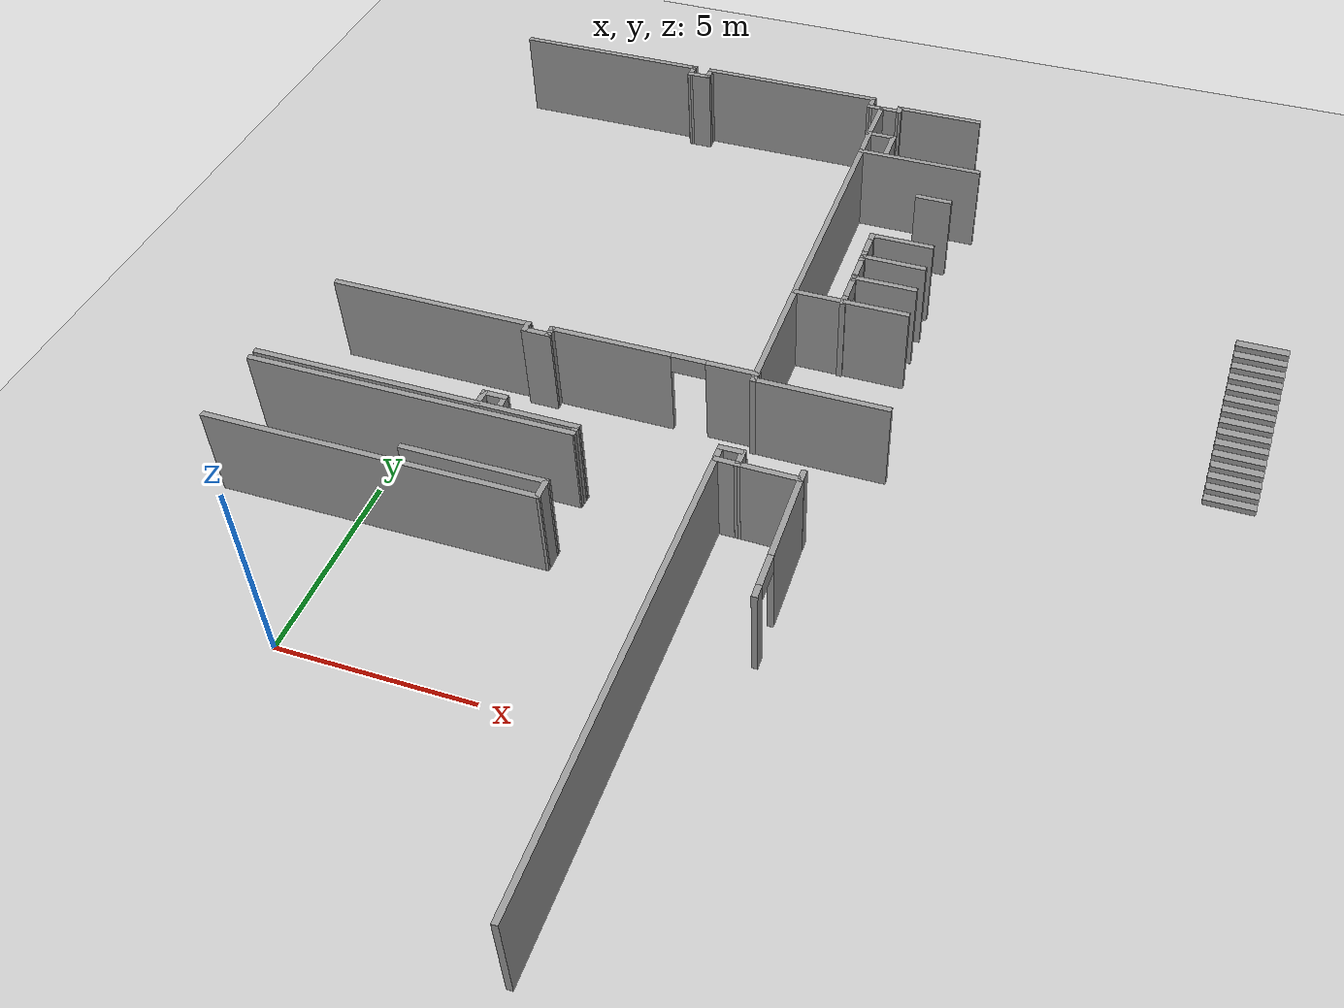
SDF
<sdf version="1.6">
 <world name="default">
  <model name="ground_plane">
   <static>1</static>
   <link name="link">
    <collision name="collision">
     <geometry><plane><normal>0 0 1</normal><size>100 100</size></plane></geometry>
     <surface>
      <contact><collide_bitmask>65535</collide_bitmask></contact>
      <friction><ode><mu>100</mu><mu2>50</mu2></ode></friction>
     </surface>
    </collision>
    <visual name="visual">
     <cast_shadows>0</cast_shadows>
     <geometry><plane><normal>0 0 1</normal><size>100 100</size></plane></geometry>
     <material>
      <script><uri>file://media/materials/scripts/gazebo.material</uri><name>Gazebo/Grey</name></script>
     </material>
    </visual>
   </link>
  </model>
  <model name="Myhal_5th_floor">
   <pose>-0.342666 0.4433 0 0 -0 0</pose>
   <link name="Stairs_4">
    <visual name="Stairs_4_Visual_0">
     <pose>20.1871 10.4054 0.083333 0 -0 -3.14159</pose>
     <geometry><box><size>1.28367 0.223247 0.166667</size></box></geometry>
     <material>
      <script><uri>file://media/materials/scripts/gazebo.material</uri><name>Gazebo/Grey</name></script>
      <ambient>1 1 1 1</ambient>
     </material>
     <meta><layer>0</layer></meta>
    </visual>
    <collision name="Stairs_4_Collision_0">
     <geometry><box><size>1.28367 0.223247 0.166667</size></box></geometry>
     <pose>20.1871 10.4054 0.083333 0 -0 -3.14159</pose>
    </collision>
    <visual name="Stairs_4_Visual_1">
     <pose>20.1871 10.6286 0.25 0 -0 -3.14159</pose>
     <geometry><box><size>1.28367 0.223247 0.166667</size></box></geometry>
     <material>
      <script><uri>file://media/materials/scripts/gazebo.material</uri><name>Gazebo/Grey</name></script>
      <ambient>1 1 1 1</ambient>
     </material>
     <meta><layer>0</layer></meta>
    </visual>
    <collision name="Stairs_4_Collision_1">
     <geometry><box><size>1.28367 0.223247 0.166667</size></box></geometry>
     <pose>20.1871 10.6286 0.25 0 -0 -3.14159</pose>
    </collision>
    <visual name="Stairs_4_Visual_2">
     <pose>20.1871 10.8519 0.416667 0 -0 -3.14159</pose>
     <geometry><box><size>1.28367 0.223247 0.166667</size></box></geometry>
     <material>
      <script><uri>file://media/materials/scripts/gazebo.material</uri><name>Gazebo/Grey</name></script>
      <ambient>1 1 1 1</ambient>
     </material>
     <meta><layer>0</layer></meta>
    </visual>
    <collision name="Stairs_4_Collision_2">
     <geometry><box><size>1.28367 0.223247 0.166667</size></box></geometry>
     <pose>20.1871 10.8519 0.416667 0 -0 -3.14159</pose>
    </collision>
    <visual name="Stairs_4_Visual_3">
     <pose>20.1871 11.0751 0.583333 0 -0 -3.14159</pose>
     <geometry><box><size>1.28367 0.223247 0.166667</size></box></geometry>
     <material>
      <script><uri>file://media/materials/scripts/gazebo.material</uri><name>Gazebo/Grey</name></script>
      <ambient>1 1 1 1</ambient>
     </material>
     <meta><layer>0</layer></meta>
    </visual>
    <collision name="Stairs_4_Collision_3">
     <geometry><box><size>1.28367 0.223247 0.166667</size></box></geometry>
     <pose>20.1871 11.0751 0.583333 0 -0 -3.14159</pose>
    </collision>
    <visual name="Stairs_4_Visual_4">
     <pose>20.1871 11.2984 0.75 0 -0 -3.14159</pose>
     <geometry><box><size>1.28367 0.223247 0.166667</size></box></geometry>
     <material>
      <script><uri>file://media/materials/scripts/gazebo.material</uri><name>Gazebo/Grey</name></script>
      <ambient>1 1 1 1</ambient>
     </material>
     <meta><layer>0</layer></meta>
    </visual>
    <collision name="Stairs_4_Collision_4">
     <geometry><box><size>1.28367 0.223247 0.166667</size></box></geometry>
     <pose>20.1871 11.2984 0.75 0 -0 -3.14159</pose>
    </collision>
    <visual name="Stairs_4_Visual_5">
     <pose>20.1871 11.5216 0.916667 0 -0 -3.14159</pose>
     <geometry><box><size>1.28367 0.223247 0.166667</size></box></geometry>
     <material>
      <script><uri>file://media/materials/scripts/gazebo.material</uri><name>Gazebo/Grey</name></script>
      <ambient>1 1 1 1</ambient>
     </material>
     <meta><layer>0</layer></meta>
    </visual>
    <collision name="Stairs_4_Collision_5">
     <geometry><box><size>1.28367 0.223247 0.166667</size></box></geometry>
     <pose>20.1871 11.5216 0.916667 0 -0 -3.14159</pose>
    </collision>
    <visual name="Stairs_4_Visual_6">
     <pose>20.1871 11.7449 1.08333 0 -0 -3.14159</pose>
     <geometry><box><size>1.28367 0.223247 0.166667</size></box></geometry>
     <material>
      <script><uri>file://media/materials/scripts/gazebo.material</uri><name>Gazebo/Grey</name></script>
      <ambient>1 1 1 1</ambient>
     </material>
     <meta><layer>0</layer></meta>
    </visual>
    <collision name="Stairs_4_Collision_6">
     <geometry><box><size>1.28367 0.223247 0.166667</size></box></geometry>
     <pose>20.1871 11.7449 1.08333 0 -0 -3.14159</pose>
    </collision>
    <visual name="Stairs_4_Visual_7">
     <pose>20.1871 11.9681 1.25 0 -0 -3.14159</pose>
     <geometry><box><size>1.28367 0.223247 0.166667</size></box></geometry>
     <material>
      <script><uri>file://media/materials/scripts/gazebo.material</uri><name>Gazebo/Grey</name></script>
      <ambient>1 1 1 1</ambient>
     </material>
     <meta><layer>0</layer></meta>
    </visual>
    <collision name="Stairs_4_Collision_7">
     <geometry><box><size>1.28367 0.223247 0.166667</size></box></geometry>
     <pose>20.1871 11.9681 1.25 0 -0 -3.14159</pose>
    </collision>
    <visual name="Stairs_4_Visual_8">
     <pose>20.1871 12.1914 1.41667 0 -0 -3.14159</pose>
     <geometry><box><size>1.28367 0.223247 0.166667</size></box></geometry>
     <material>
      <script><uri>file://media/materials/scripts/gazebo.material</uri><name>Gazebo/Grey</name></script>
      <ambient>1 1 1 1</ambient>
     </material>
     <meta><layer>0</layer></meta>
    </visual>
    <collision name="Stairs_4_Collision_8">
     <geometry><box><size>1.28367 0.223247 0.166667</size></box></geometry>
     <pose>20.1871 12.1914 1.41667 0 -0 -3.14159</pose>
    </collision>
    <visual name="Stairs_4_Visual_9">
     <pose>20.1871 12.4146 1.58333 0 -0 -3.14159</pose>
     <geometry><box><size>1.28367 0.223247 0.166667</size></box></geometry>
     <material>
      <script><uri>file://media/materials/scripts/gazebo.material</uri><name>Gazebo/Grey</name></script>
      <ambient>1 1 1 1</ambient>
     </material>
     <meta><layer>0</layer></meta>
    </visual>
    <collision name="Stairs_4_Collision_9">
     <geometry><box><size>1.28367 0.223247 0.166667</size></box></geometry>
     <pose>20.1871 12.4146 1.58333 0 -0 -3.14159</pose>
    </collision>
    <visual name="Stairs_4_Visual_10">
     <pose>20.1871 12.6379 1.75 0 -0 -3.14159</pose>
     <geometry><box><size>1.28367 0.223247 0.166667</size></box></geometry>
     <material>
      <script><uri>file://media/materials/scripts/gazebo.material</uri><name>Gazebo/Grey</name></script>
      <ambient>1 1 1 1</ambient>
     </material>
     <meta><layer>0</layer></meta>
    </visual>
    <collision name="Stairs_4_Collision_10">
     <geometry><box><size>1.28367 0.223247 0.166667</size></box></geometry>
     <pose>20.1871 12.6379 1.75 0 -0 -3.14159</pose>
    </collision>
    <visual name="Stairs_4_Visual_11">
     <pose>20.1871 12.8611 1.91667 0 -0 -3.14159</pose>
     <geometry><box><size>1.28367 0.223247 0.166667</size></box></geometry>
     <material>
      <script><uri>file://media/materials/scripts/gazebo.material</uri><name>Gazebo/Grey</name></script>
      <ambient>1 1 1 1</ambient>
     </material>
     <meta><layer>0</layer></meta>
    </visual>
    <collision name="Stairs_4_Collision_11">
     <geometry><box><size>1.28367 0.223247 0.166667</size></box></geometry>
     <pose>20.1871 12.8611 1.91667 0 -0 -3.14159</pose>
    </collision>
    <visual name="Stairs_4_Visual_12">
     <pose>20.1871 13.0844 2.08333 0 -0 -3.14159</pose>
     <geometry><box><size>1.28367 0.223247 0.166667</size></box></geometry>
     <material>
      <script><uri>file://media/materials/scripts/gazebo.material</uri><name>Gazebo/Grey</name></script>
      <ambient>1 1 1 1</ambient>
     </material>
     <meta><layer>0</layer></meta>
    </visual>
    <collision name="Stairs_4_Collision_12">
     <geometry><box><size>1.28367 0.223247 0.166667</size></box></geometry>
     <pose>20.1871 13.0844 2.08333 0 -0 -3.14159</pose>
    </collision>
    <visual name="Stairs_4_Visual_13">
     <pose>20.1871 13.3076 2.25 0 -0 -3.14159</pose>
     <geometry><box><size>1.28367 0.223247 0.166667</size></box></geometry>
     <material>
      <script><uri>file://media/materials/scripts/gazebo.material</uri><name>Gazebo/Grey</name></script>
      <ambient>1 1 1 1</ambient>
     </material>
     <meta><layer>0</layer></meta>
    </visual>
    <collision name="Stairs_4_Collision_13">
     <geometry><box><size>1.28367 0.223247 0.166667</size></box></geometry>
     <pose>20.1871 13.3076 2.25 0 -0 -3.14159</pose>
    </collision>
    <visual name="Stairs_4_Visual_14">
     <pose>20.1871 13.5309 2.41667 0 -0 -3.14159</pose>
     <geometry><box><size>1.28367 0.223247 0.166667</size></box></geometry>
     <material>
      <script><uri>file://media/materials/scripts/gazebo.material</uri><name>Gazebo/Grey</name></script>
      <ambient>1 1 1 1</ambient>
     </material>
     <meta><layer>0</layer></meta>
    </visual>
    <collision name="Stairs_4_Collision_14">
     <geometry><box><size>1.28367 0.223247 0.166667</size></box></geometry>
     <pose>20.1871 13.5309 2.41667 0 -0 -3.14159</pose>
    </collision>
   </link>
   <link name="Wall_102">
    <collision name="Wall_102_Collision">
     <geometry><box><size>1.64842 0.15 2.5</size></box></geometry>
     <pose>0 0 1.25 0 -0 0</pose>
    </collision>
    <visual name="Wall_102_Visual">
     <pose>0 0 1.25 0 -0 0</pose>
     <geometry><box><size>1.64842 0.15 2.5</size></box></geometry>
     <material>
      <script><uri>file://media/materials/scripts/gazebo.material</uri><name>Gazebo/Grey</name></script>
      <ambient>1 1 1 1</ambient>
     </material>
     <meta><layer>0</layer></meta>
    </visual>
    <pose>9.91984 5.85077 0 0 -0 -0.006668</pose>
   </link>
   <link name="Wall_104">
    <pose>10.6939 4.11514 0 0 -0 -1.55644</pose>
    <visual name="Wall_104_Visual_0">
     <pose>-0.603871 0 1.25 0 -0 0</pose>
     <geometry><box><size>2.40404 0.15 2.5</size></box></geometry>
     <material>
      <script><uri>file://media/materials/scripts/gazebo.material</uri><name>Gazebo/Grey</name></script>
      <ambient>1 1 1 1</ambient>
     </material>
     <meta><layer>0</layer></meta>
    </visual>
    <collision name="Wall_104_Collision_0">
     <geometry><box><size>2.40404 0.15 2.5</size></box></geometry>
     <pose>-0.603871 0 1.25 0 -0 0</pose>
    </collision>
    <visual name="Wall_104_Visual_1">
     <pose>1.63287 0 1.25 0 -0 0</pose>
     <geometry><box><size>0.346047 0.15 2.5</size></box></geometry>
     <material>
      <script><uri>file://media/materials/scripts/gazebo.material</uri><name>Gazebo/Grey</name></script>
      <ambient>1 1 1 1</ambient>
     </material>
     <meta><layer>0</layer></meta>
    </visual>
    <collision name="Wall_104_Collision_1">
     <geometry><box><size>0.346047 0.15 2.5</size></box></geometry>
     <pose>1.63287 0 1.25 0 -0 0</pose>
    </collision>
    <visual name="Wall_104_Visual_2">
     <pose>1.029 0 2.25 0 -0 0</pose>
     <geometry><box><size>0.861696 0.15 0.5</size></box></geometry>
     <material>
      <script><uri>file://media/materials/scripts/gazebo.material</uri><name>Gazebo/Grey</name></script>
      <ambient>1 1 1 1</ambient>
     </material>
     <meta><layer>0</layer></meta>
    </visual>
    <collision name="Wall_104_Collision_2">
     <geometry><box><size>0.861696 0.15 0.5</size></box></geometry>
     <pose>1.029 0 2.25 0 -0 0</pose>
    </collision>
   </link>
   <link name="Wall_117">
    <collision name="Wall_117_Collision">
     <geometry><box><size>0.362716 0.15 2.5</size></box></geometry>
     <pose>0 0 1.25 0 -0 0</pose>
    </collision>
    <visual name="Wall_117_Visual">
     <pose>0 0 1.25 0 -0 0</pose>
     <geometry><box><size>0.362716 0.15 2.5</size></box></geometry>
     <material>
      <script><uri>file://media/materials/scripts/gazebo.material</uri><name>Gazebo/Grey</name></script>
      <ambient>1 1 1 1</ambient>
     </material>
     <meta><layer>0</layer></meta>
    </visual>
    <pose>10.6701 5.95213 0 0 -0 1.56042</pose>
   </link>
   <link name="Wall_17">
    <collision name="Wall_17_Collision">
     <geometry><box><size>3.75 0.15 2.5</size></box></geometry>
     <pose>0 0 1.25 0 -0 0</pose>
    </collision>
    <visual name="Wall_17_Visual">
     <pose>0 0 1.25 0 -0 0</pose>
     <geometry><box><size>3.75 0.15 2.5</size></box></geometry>
     <material>
      <script><uri>file://media/materials/scripts/gazebo.material</uri><name>Gazebo/Grey</name></script>
      <ambient>1 1 1 1</ambient>
     </material>
     <meta><layer>0</layer></meta>
    </visual>
    <pose>3.43977 4.01995 0 0 -0 0</pose>
   </link>
   <link name="Wall_18">
    <collision name="Wall_18_Collision">
     <geometry><box><size>0.620131 0.15 2.5</size></box></geometry>
     <pose>0 0 1.25 0 -0 0</pose>
    </collision>
    <visual name="Wall_18_Visual">
     <pose>0 0 1.25 0 -0 0</pose>
     <geometry><box><size>0.620131 0.15 2.5</size></box></geometry>
     <material>
      <script><uri>file://media/materials/scripts/gazebo.material</uri><name>Gazebo/Grey</name></script>
      <ambient>1 1 1 1</ambient>
     </material>
     <meta><layer>0</layer></meta>
    </visual>
    <pose>5.23862 3.7849 0 0 -0 -1.5757</pose>
   </link>
   <link name="Wall_20">
    <collision name="Wall_20_Collision">
     <geometry><box><size>8.64006 0.15 2.5</size></box></geometry>
     <pose>0 0 1.25 0 -0 0</pose>
    </collision>
    <visual name="Wall_20_Visual">
     <pose>0 0 1.25 0 -0 0</pose>
     <geometry><box><size>8.64006 0.15 2.5</size></box></geometry>
     <material>
      <script><uri>file://media/materials/scripts/gazebo.material</uri><name>Gazebo/Grey</name></script>
      <ambient>1 1 1 1</ambient>
     </material>
     <meta><layer>0</layer></meta>
    </visual>
    <pose>0.992435 3.54836 0 0 -0 -3.14124</pose>
   </link>
   <link name="Wall_22">
    <collision name="Wall_22_Collision">
     <geometry><box><size>8.62254 0.15 2.5</size></box></geometry>
     <pose>0 0 1.25 0 -0 0</pose>
    </collision>
    <visual name="Wall_22_Visual">
     <pose>0 0 1.25 0 -0 0</pose>
     <geometry><box><size>8.62254 0.15 2.5</size></box></geometry>
     <material>
      <script><uri>file://media/materials/scripts/gazebo.material</uri><name>Gazebo/Grey</name></script>
      <ambient>1 1 1 1</ambient>
     </material>
     <meta><layer>0</layer></meta>
    </visual>
    <pose>0.976204 5.62118 0 0 -0 0.000372</pose>
   </link>
   <link name="Wall_23">
    <collision name="Wall_23_Collision">
     <geometry><box><size>0.372408 0.15 2.5</size></box></geometry>
     <pose>0 0 1.25 0 -0 0</pose>
    </collision>
    <visual name="Wall_23_Visual">
     <pose>0 0 1.25 0 -0 0</pose>
     <geometry><box><size>0.372408 0.15 2.5</size></box></geometry>
     <material>
      <script><uri>file://media/materials/scripts/gazebo.material</uri><name>Gazebo/Grey</name></script>
      <ambient>1 1 1 1</ambient>
     </material>
     <meta><layer>0</layer></meta>
    </visual>
    <pose>5.2195 5.73665 0 0 -0 1.47916</pose>
   </link>
   <link name="Wall_24">
    <collision name="Wall_24_Collision">
     <geometry><box><size>8.6177 0.15 2.5</size></box></geometry>
     <pose>0 0 1.25 0 -0 0</pose>
    </collision>
    <visual name="Wall_24_Visual">
     <pose>0 0 1.25 0 -0 0</pose>
     <geometry><box><size>8.6177 0.15 2.5</size></box></geometry>
     <material>
      <script><uri>file://media/materials/scripts/gazebo.material</uri><name>Gazebo/Grey</name></script>
      <ambient>1 1 1 1</ambient>
     </material>
     <meta><layer>0</layer></meta>
    </visual>
    <pose>0.995836 5.85711 0 0 -0 3.1393</pose>
   </link>
   <link name="Wall_31">
    <collision name="Wall_31_Collision">
     <geometry><box><size>0.543989 0.15 2.5</size></box></geometry>
     <pose>0 0 1.25 0 -0 0</pose>
    </collision>
    <visual name="Wall_31_Visual">
     <pose>0 0 1.25 0 -0 0</pose>
     <geometry><box><size>0.543989 0.15 2.5</size></box></geometry>
     <material>
      <script><uri>file://media/materials/scripts/gazebo.material</uri><name>Gazebo/Grey</name></script>
      <ambient>1 1 1 1</ambient>
     </material>
     <meta><layer>0</layer></meta>
    </visual>
    <pose>2.6884 6.0395 0 0 -0 1.55845</pose>
   </link>
   <link name="Wall_32">
    <collision name="Wall_32_Collision">
     <geometry><box><size>0.680142 0.15 2.5</size></box></geometry>
     <pose>0 0 1.25 0 -0 0</pose>
    </collision>
    <visual name="Wall_32_Visual">
     <pose>0 0 1.25 0 -0 0</pose>
     <geometry><box><size>0.680142 0.15 2.5</size></box></geometry>
     <material>
      <script><uri>file://media/materials/scripts/gazebo.material</uri><name>Gazebo/Grey</name></script>
      <ambient>1 1 1 1</ambient>
     </material>
     <meta><layer>0</layer></meta>
    </visual>
    <pose>2.9559 6.23648 0 0 -0 0</pose>
   </link>
   <link name="Wall_33">
    <collision name="Wall_33_Collision">
     <geometry><box><size>0.476193 0.15 2.5</size></box></geometry>
     <pose>0 0 1.25 0 -0 0</pose>
    </collision>
    <visual name="Wall_33_Visual">
     <pose>0 0 1.25 0 -0 0</pose>
     <geometry><box><size>0.476193 0.15 2.5</size></box></geometry>
     <material>
      <script><uri>file://media/materials/scripts/gazebo.material</uri><name>Gazebo/Grey</name></script>
      <ambient>1 1 1 1</ambient>
     </material>
     <meta><layer>0</layer></meta>
    </visual>
    <pose>3.2234 6.07355 0 0 -0 -1.55587</pose>
   </link>
   <link name="Wall_36">
    <collision name="Wall_36_Collision">
     <geometry><box><size>12.3927 0.15 2.5</size></box></geometry>
     <pose>0 0 1.25 0 -0 0</pose>
    </collision>
    <visual name="Wall_36_Visual">
     <pose>0 0 1.25 0 -0 0</pose>
     <geometry><box><size>12.3927 0.15 2.5</size></box></geometry>
     <material>
      <script><uri>file://media/materials/scripts/gazebo.material</uri><name>Gazebo/Grey</name></script>
      <ambient>1 1 1 1</ambient>
     </material>
     <meta><layer>0</layer></meta>
    </visual>
    <pose>8.63447 0.122553 0 0 -0 -1.57033</pose>
   </link>
   <link name="Wall_38">
    <collision name="Wall_38_Collision">
     <geometry><box><size>0.684767 0.15 2.5</size></box></geometry>
     <pose>0 0 1.25 0 -0 0</pose>
    </collision>
    <visual name="Wall_38_Visual">
     <pose>0 0 1.25 0 -0 0</pose>
     <geometry><box><size>0.684767 0.15 2.5</size></box></geometry>
     <material>
      <script><uri>file://media/materials/scripts/gazebo.material</uri><name>Gazebo/Grey</name></script>
      <ambient>1 1 1 1</ambient>
     </material>
     <meta><layer>0</layer></meta>
    </visual>
    <pose>8.89896 6.24605 0 0 -0 0.008064</pose>
   </link>
   <link name="Wall_39">
    <collision name="Wall_39_Collision">
     <geometry><box><size>0.542461 0.15 2.5</size></box></geometry>
     <pose>0 0 1.25 0 -0 0</pose>
    </collision>
    <visual name="Wall_39_Visual">
     <pose>0 0 1.25 0 -0 0</pose>
     <geometry><box><size>0.542461 0.15 2.5</size></box></geometry>
     <material>
      <script><uri>file://media/materials/scripts/gazebo.material</uri><name>Gazebo/Grey</name></script>
      <ambient>1 1 1 1</ambient>
     </material>
     <meta><layer>0</layer></meta>
    </visual>
    <pose>9.16849 6.05199 0 0 -0 -1.55981</pose>
   </link>
   <link name="Wall_40">
    <collision name="Wall_40_Collision">
     <geometry><box><size>0.658948 0.15 2.5</size></box></geometry>
     <pose>0 0 1.25 0 -0 0</pose>
    </collision>
    <visual name="Wall_40_Visual">
     <pose>0 0 1.25 0 -0 0</pose>
     <geometry><box><size>0.658948 0.15 2.5</size></box></geometry>
     <material>
      <script><uri>file://media/materials/scripts/gazebo.material</uri><name>Gazebo/Grey</name></script>
      <ambient>1 1 1 1</ambient>
     </material>
     <meta><layer>0</layer></meta>
    </visual>
    <pose>8.91621 5.86008 0 0 -0 3.12465</pose>
   </link>
   <link name="Wall_531">
    <collision name="Wall_531_Collision">
     <geometry><box><size>3.5 0.15 2.5</size></box></geometry>
     <pose>0 0 1.25 0 -0 0</pose>
    </collision>
    <visual name="Wall_531_Visual">
     <pose>0 0 1.25 0 -0 0</pose>
     <geometry><box><size>3.5 0.15 2.5</size></box></geometry>
     <material>
      <script><uri>file://media/materials/scripts/gazebo.material</uri><name>Gazebo/Grey</name></script>
      <ambient>1 1 1 1</ambient>
     </material>
     <meta><layer>0</layer></meta>
    </visual>
    <pose>10.312 18.572 0 0 -0 3.14159</pose>
   </link>
   <link name="Wall_533">
    <collision name="Wall_533_Collision">
     <geometry><box><size>0.860837 0.15 2.5</size></box></geometry>
     <pose>0 0 1.25 0 -0 0</pose>
    </collision>
    <visual name="Wall_533_Visual">
     <pose>0 0 1.25 0 -0 0</pose>
     <geometry><box><size>0.860837 0.15 2.5</size></box></geometry>
     <material>
      <script><uri>file://media/materials/scripts/gazebo.material</uri><name>Gazebo/Grey</name></script>
      <ambient>1 1 1 1</ambient>
     </material>
     <meta><layer>0</layer></meta>
    </visual>
    <pose>8.98048 19.4886 0 0 -0 0</pose>
   </link>
   <link name="Wall_534">
    <collision name="Wall_534_Collision">
     <geometry><box><size>1.03034 0.15 2.5</size></box></geometry>
     <pose>0 0 1.25 0 -0 0</pose>
    </collision>
    <visual name="Wall_534_Visual">
     <pose>0 0 1.25 0 -0 0</pose>
     <geometry><box><size>1.03034 0.15 2.5</size></box></geometry>
     <material>
      <script><uri>file://media/materials/scripts/gazebo.material</uri><name>Gazebo/Grey</name></script>
      <ambient>1 1 1 1</ambient>
     </material>
     <meta><layer>0</layer></meta>
    </visual>
    <pose>9.33589 19.0484 0 0 -0 -1.5708</pose>
   </link>
   <link name="Wall_536">
    <collision name="Wall_536_Collision">
     <geometry><box><size>2.46784 0.15 2.5</size></box></geometry>
     <pose>0 0 1.25 0 -0 0</pose>
    </collision>
    <visual name="Wall_536_Visual">
     <pose>0 0 1.25 0 -0 0</pose>
     <geometry><box><size>2.46784 0.15 2.5</size></box></geometry>
     <material>
      <script><uri>file://media/materials/scripts/gazebo.material</uri><name>Gazebo/Grey</name></script>
      <ambient>1 1 1 1</ambient>
     </material>
     <meta><layer>0</layer></meta>
    </visual>
    <pose>10.3157 20.9921 0 0 -0 -3.13851</pose>
   </link>
   <link name="Wall_537">
    <collision name="Wall_537_Collision">
     <geometry><box><size>0.30733 0.15 2.5</size></box></geometry>
     <pose>0 0 1.25 0 -0 0</pose>
    </collision>
    <visual name="Wall_537_Visual">
     <pose>0 0 1.25 0 -0 0</pose>
     <geometry><box><size>0.30733 0.15 2.5</size></box></geometry>
     <material>
      <script><uri>file://media/materials/scripts/gazebo.material</uri><name>Gazebo/Grey</name></script>
      <ambient>1 1 1 1</ambient>
     </material>
     <meta><layer>0</layer></meta>
    </visual>
    <pose>9.15989 20.91 0 0 -0 -1.53082</pose>
   </link>
   <link name="Wall_538">
    <collision name="Wall_538_Collision">
     <geometry><box><size>0.678244 0.15 2.5</size></box></geometry>
     <pose>0 0 1.25 0 -0 0</pose>
    </collision>
    <visual name="Wall_538_Visual">
     <pose>0 0 1.25 0 -0 0</pose>
     <geometry><box><size>0.678244 0.15 2.5</size></box></geometry>
     <material>
      <script><uri>file://media/materials/scripts/gazebo.material</uri><name>Gazebo/Grey</name></script>
      <ambient>1 1 1 1</ambient>
     </material>
     <meta><layer>0</layer></meta>
    </visual>
    <pose>8.89893 20.8282 0 0 -0 -3.12969</pose>
   </link>
   <link name="Wall_539">
    <collision name="Wall_539_Collision">
     <geometry><box><size>1.48654 0.15 2.5</size></box></geometry>
     <pose>0 0 1.25 0 -0 0</pose>
    </collision>
    <visual name="Wall_539_Visual">
     <pose>0 0 1.25 0 -0 0</pose>
     <geometry><box><size>1.48654 0.15 2.5</size></box></geometry>
     <material>
      <script><uri>file://media/materials/scripts/gazebo.material</uri><name>Gazebo/Grey</name></script>
      <ambient>1 1 1 1</ambient>
     </material>
     <meta><layer>0</layer></meta>
    </visual>
    <pose>8.62994 20.1568 0 0 -0 -1.57811</pose>
   </link>
   <link name="Wall_540">
    <collision name="Wall_540_Collision">
     <geometry><box><size>1.06666 0.15 2.5</size></box></geometry>
     <pose>0 0 1.25 0 -0 0</pose>
    </collision>
    <visual name="Wall_540_Visual">
     <pose>0 0 1.25 0 -0 0</pose>
     <geometry><box><size>1.06666 0.15 2.5</size></box></geometry>
     <material>
      <script><uri>file://media/materials/scripts/gazebo.material</uri><name>Gazebo/Grey</name></script>
      <ambient>1 1 1 1</ambient>
     </material>
     <meta><layer>0</layer></meta>
    </visual>
    <pose>8.63101 19.0303 0 0 -0 -1.5578</pose>
   </link>
   <link name="Wall_542">
    <collision name="Wall_542_Collision">
     <geometry><box><size>0.5 0.15 2.5</size></box></geometry>
     <pose>0 0 1.25 0 -0 0</pose>
    </collision>
    <visual name="Wall_542_Visual">
     <pose>0 0 1.25 0 -0 0</pose>
     <geometry><box><size>0.5 0.15 2.5</size></box></geometry>
     <material>
      <script><uri>file://media/materials/scripts/gazebo.material</uri><name>Gazebo/Grey</name></script>
      <ambient>1 1 1 1</ambient>
     </material>
     <meta><layer>0</layer></meta>
    </visual>
    <pose>8.45983 20.8251 0 0 -0 3.14159</pose>
   </link>
   <link name="Wall_543">
    <collision name="Wall_543_Collision">
     <geometry><box><size>0.552464 0.15 2.5</size></box></geometry>
     <pose>0 0 1.25 0 -0 0</pose>
    </collision>
    <visual name="Wall_543_Visual">
     <pose>0 0 1.25 0 -0 0</pose>
     <geometry><box><size>0.552464 0.15 2.5</size></box></geometry>
     <material>
      <script><uri>file://media/materials/scripts/gazebo.material</uri><name>Gazebo/Grey</name></script>
      <ambient>1 1 1 1</ambient>
     </material>
     <meta><layer>0</layer></meta>
    </visual>
    <pose>8.2869 21.0263 0 0 -0 1.56048</pose>
   </link>
   <link name="Wall_545">
    <collision name="Wall_545_Collision">
     <geometry><box><size>6.64286 0.15 2.5</size></box></geometry>
     <pose>0 0 1.25 0 -0 0</pose>
    </collision>
    <visual name="Wall_545_Visual">
     <pose>0 0 1.25 0 -0 0</pose>
     <geometry><box><size>6.64286 0.15 2.5</size></box></geometry>
     <material>
      <script><uri>file://media/materials/scripts/gazebo.material</uri><name>Gazebo/Grey</name></script>
      <ambient>1 1 1 1</ambient>
     </material>
     <meta><layer>0</layer></meta>
    </visual>
    <pose>8.6365 15.3256 0 0 -0 -1.57094</pose>
   </link>
   <link name="Wall_546">
    <collision name="Wall_546_Collision">
     <geometry><box><size>3.08559 0.15 2.5</size></box></geometry>
     <pose>0 0 1.25 0 -0 0</pose>
    </collision>
    <visual name="Wall_546_Visual">
     <pose>0 0 1.25 0 -0 0</pose>
     <geometry><box><size>3.08559 0.15 2.5</size></box></geometry>
     <material>
      <script><uri>file://media/materials/scripts/gazebo.material</uri><name>Gazebo/Grey</name></script>
      <ambient>1 1 1 1</ambient>
     </material>
     <meta><layer>0</layer></meta>
    </visual>
    <pose>10.1038 12.0791 0 0 -0 0</pose>
   </link>
   <link name="Wall_548">
    <collision name="Wall_548_Collision">
     <geometry><box><size>1 0.15 2.5</size></box></geometry>
     <pose>0 0 1.25 0 -0 0</pose>
    </collision>
    <visual name="Wall_548_Visual">
     <pose>0 0 1.25 0 -0 0</pose>
     <geometry><box><size>1 0.15 2.5</size></box></geometry>
     <material>
      <script><uri>file://media/materials/scripts/gazebo.material</uri><name>Gazebo/Grey</name></script>
      <ambient>1 1 1 1</ambient>
     </material>
     <meta><layer>0</layer></meta>
    </visual>
    <pose>11.1133 16.9773 0 0 -0 3.14159</pose>
   </link>
   <link name="Wall_556">
    <collision name="Wall_556_Collision">
     <geometry><box><size>1.77029 0.15 2.5</size></box></geometry>
     <pose>0 0 1.25 0 -0 0</pose>
    </collision>
    <visual name="Wall_556_Visual">
     <pose>0 0 1.25 0 -0 0</pose>
     <geometry><box><size>1.77029 0.15 2.5</size></box></geometry>
     <material>
      <script><uri>file://media/materials/scripts/gazebo.material</uri><name>Gazebo/Grey</name></script>
      <ambient>1 1 1 1</ambient>
     </material>
     <meta><layer>0</layer></meta>
    </visual>
    <pose>10.7385 13.9847 0 0 -0 3.13979</pose>
   </link>
   <link name="Wall_558">
    <collision name="Wall_558_Collision">
     <geometry><box><size>1.75 0.15 2.5</size></box></geometry>
     <pose>0 0 1.25 0 -0 0</pose>
    </collision>
    <visual name="Wall_558_Visual">
     <pose>0 0 1.25 0 -0 0</pose>
     <geometry><box><size>1.75 0.15 2.5</size></box></geometry>
     <material>
      <script><uri>file://media/materials/scripts/gazebo.material</uri><name>Gazebo/Grey</name></script>
      <ambient>1 1 1 1</ambient>
     </material>
     <meta><layer>0</layer></meta>
    </visual>
    <pose>10.727 14.9161 0 0 -0 3.14159</pose>
   </link>
   <link name="Wall_560">
    <collision name="Wall_560_Collision">
     <geometry><box><size>1.75 0.15 2.5</size></box></geometry>
     <pose>0 0 1.25 0 -0 0</pose>
    </collision>
    <visual name="Wall_560_Visual">
     <pose>0 0 1.25 0 -0 0</pose>
     <geometry><box><size>1.75 0.15 2.5</size></box></geometry>
     <material>
      <script><uri>file://media/materials/scripts/gazebo.material</uri><name>Gazebo/Grey</name></script>
      <ambient>1 1 1 1</ambient>
     </material>
     <meta><layer>0</layer></meta>
    </visual>
    <pose>10.727 13.0793 0 0 -0 3.14159</pose>
   </link>
   <link name="Wall_567">
    <pose>9.9277 14.4512 0 0 -0 -1.56928</pose>
    <visual name="Wall_567_Visual_0">
     <pose>-0.405592 0 1.25 0 -0 0</pose>
     <geometry><box><size>0.268777 0.15 2.5</size></box></geometry>
     <material>
      <script><uri>file://media/materials/scripts/gazebo.material</uri><name>Gazebo/Grey</name></script>
      <ambient>1 1 1 1</ambient>
     </material>
     <meta><layer>0</layer></meta>
    </visual>
    <collision name="Wall_567_Collision_0">
     <geometry><box><size>0.268777 0.15 2.5</size></box></geometry>
     <pose>-0.405592 0 1.25 0 -0 0</pose>
    </collision>
    <visual name="Wall_567_Visual_1">
     <pose>0.398935 0 1.25 0 -0 0</pose>
     <geometry><box><size>0.28209 0.15 2.5</size></box></geometry>
     <material>
      <script><uri>file://media/materials/scripts/gazebo.material</uri><name>Gazebo/Grey</name></script>
      <ambient>1 1 1 1</ambient>
     </material>
     <meta><layer>0</layer></meta>
    </visual>
    <collision name="Wall_567_Collision_1">
     <geometry><box><size>0.28209 0.15 2.5</size></box></geometry>
     <pose>0.398935 0 1.25 0 -0 0</pose>
    </collision>
    <visual name="Wall_567_Visual_2">
     <pose>-0.006657 0 2.25 0 -0 0</pose>
     <geometry><box><size>0.529094 0.15 0.5</size></box></geometry>
     <material>
      <script><uri>file://media/materials/scripts/gazebo.material</uri><name>Gazebo/Grey</name></script>
      <ambient>1 1 1 1</ambient>
     </material>
     <meta><layer>0</layer></meta>
    </visual>
    <collision name="Wall_567_Collision_2">
     <geometry><box><size>0.529094 0.15 0.5</size></box></geometry>
     <pose>-0.006657 0 2.25 0 -0 0</pose>
    </collision>
   </link>
   <link name="Wall_568">
    <pose>9.9277 13.5328 0 0 -0 -1.57235</pose>
    <visual name="Wall_568_Visual_0">
     <pose>-0.396807 0 1.25 0 -0 0</pose>
     <geometry><box><size>0.263264 0.15 2.5</size></box></geometry>
     <material>
      <script><uri>file://media/materials/scripts/gazebo.material</uri><name>Gazebo/Grey</name></script>
      <ambient>1 1 1 1</ambient>
     </material>
     <meta><layer>0</layer></meta>
    </visual>
    <collision name="Wall_568_Collision_0">
     <geometry><box><size>0.263264 0.15 2.5</size></box></geometry>
     <pose>-0.396807 0 1.25 0 -0 0</pose>
    </collision>
    <visual name="Wall_568_Visual_1">
     <pose>0.43386 0 1.25 0 -0 0</pose>
     <geometry><box><size>0.189158 0.15 2.5</size></box></geometry>
     <material>
      <script><uri>file://media/materials/scripts/gazebo.material</uri><name>Gazebo/Grey</name></script>
      <ambient>1 1 1 1</ambient>
     </material>
     <meta><layer>0</layer></meta>
    </visual>
    <collision name="Wall_568_Collision_1">
     <geometry><box><size>0.189158 0.15 2.5</size></box></geometry>
     <pose>0.43386 0 1.25 0 -0 0</pose>
    </collision>
    <visual name="Wall_568_Visual_2">
     <pose>0.037053 0 2.25 0 -0 0</pose>
     <geometry><box><size>0.604456 0.15 0.5</size></box></geometry>
     <material>
      <script><uri>file://media/materials/scripts/gazebo.material</uri><name>Gazebo/Grey</name></script>
      <ambient>1 1 1 1</ambient>
     </material>
     <meta><layer>0</layer></meta>
    </visual>
    <collision name="Wall_568_Collision_2">
     <geometry><box><size>0.604456 0.15 0.5</size></box></geometry>
     <pose>0.037053 0 2.25 0 -0 0</pose>
    </collision>
   </link>
   <link name="Wall_569">
    <pose>9.92643 12.5595 0 0 -0 -1.57188</pose>
    <visual name="Wall_569_Visual_0">
     <pose>-0.489065 0 1.25 0 -0 0</pose>
     <geometry><box><size>0.211593 0.15 2.5</size></box></geometry>
     <material>
      <script><uri>file://media/materials/scripts/gazebo.material</uri><name>Gazebo/Grey</name></script>
      <ambient>1 1 1 1</ambient>
     </material>
     <meta><layer>0</layer></meta>
    </visual>
    <collision name="Wall_569_Collision_0">
     <geometry><box><size>0.211593 0.15 2.5</size></box></geometry>
     <pose>-0.489065 0 1.25 0 -0 0</pose>
    </collision>
    <visual name="Wall_569_Visual_1">
     <pose>0.426903 0 1.25 0 -0 0</pose>
     <geometry><box><size>0.335918 0.15 2.5</size></box></geometry>
     <material>
      <script><uri>file://media/materials/scripts/gazebo.material</uri><name>Gazebo/Grey</name></script>
      <ambient>1 1 1 1</ambient>
     </material>
     <meta><layer>0</layer></meta>
    </visual>
    <collision name="Wall_569_Collision_1">
     <geometry><box><size>0.335918 0.15 2.5</size></box></geometry>
     <pose>0.426903 0 1.25 0 -0 0</pose>
    </collision>
    <visual name="Wall_569_Visual_2">
     <pose>-0.062162 0 2.25 0 -0 0</pose>
     <geometry><box><size>0.642212 0.15 0.5</size></box></geometry>
     <material>
      <script><uri>file://media/materials/scripts/gazebo.material</uri><name>Gazebo/Grey</name></script>
      <ambient>1 1 1 1</ambient>
     </material>
     <meta><layer>0</layer></meta>
    </visual>
    <collision name="Wall_569_Collision_2">
     <geometry><box><size>0.642212 0.15 0.5</size></box></geometry>
     <pose>-0.062162 0 2.25 0 -0 0</pose>
    </collision>
   </link>
   <link name="Wall_571">
    <collision name="Wall_571_Collision">
     <geometry><box><size>3.60264 0.15 2.5</size></box></geometry>
     <pose>0 0 1.25 0 -0 0</pose>
    </collision>
    <visual name="Wall_571_Visual">
     <pose>0 0 1.25 0 -0 0</pose>
     <geometry><box><size>3.60264 0.15 2.5</size></box></geometry>
     <material>
      <script><uri>file://media/materials/scripts/gazebo.material</uri><name>Gazebo/Grey</name></script>
      <ambient>1 1 1 1</ambient>
     </material>
     <meta><layer>0</layer></meta>
    </visual>
    <pose>8.64138 10.3528 0 0 -0 -1.56769</pose>
   </link>
   <link name="Wall_572">
    <collision name="Wall_572_Collision">
     <geometry><box><size>3.5 0.15 2.5</size></box></geometry>
     <pose>0 0 1.25 0 -0 0</pose>
    </collision>
    <visual name="Wall_572_Visual">
     <pose>0 0 1.25 0 -0 0</pose>
     <geometry><box><size>3.5 0.15 2.5</size></box></geometry>
     <material>
      <script><uri>file://media/materials/scripts/gazebo.material</uri><name>Gazebo/Grey</name></script>
      <ambient>1 1 1 1</ambient>
     </material>
     <meta><layer>0</layer></meta>
    </visual>
    <pose>10.3217 8.63607 0 0 -0 0</pose>
   </link>
   <link name="Wall_576">
    <pose>5.99087 8.84647 0 0 -0 3.14159</pose>
    <visual name="Wall_576_Visual_0">
     <pose>-2.06394 0 1.25 0 -0 0</pose>
     <geometry><box><size>1.37211 0.15 2.5</size></box></geometry>
     <material>
      <script><uri>file://media/materials/scripts/gazebo.material</uri><name>Gazebo/Grey</name></script>
      <ambient>1 1 1 1</ambient>
     </material>
     <meta><layer>0</layer></meta>
    </visual>
    <collision name="Wall_576_Collision_0">
     <geometry><box><size>1.37211 0.15 2.5</size></box></geometry>
     <pose>-2.06394 0 1.25 0 -0 0</pose>
    </collision>
    <visual name="Wall_576_Visual_1">
     <pose>1.13606 0 1.25 0 -0 0</pose>
     <geometry><box><size>3.22789 0.15 2.5</size></box></geometry>
     <material>
      <script><uri>file://media/materials/scripts/gazebo.material</uri><name>Gazebo/Grey</name></script>
      <ambient>1 1 1 1</ambient>
     </material>
     <meta><layer>0</layer></meta>
    </visual>
    <collision name="Wall_576_Collision_1">
     <geometry><box><size>3.22789 0.15 2.5</size></box></geometry>
     <pose>1.13606 0 1.25 0 -0 0</pose>
    </collision>
    <visual name="Wall_576_Visual_2">
     <pose>-0.927891 0 2.25 0 -0 0</pose>
     <geometry><box><size>0.9 0.15 0.5</size></box></geometry>
     <material>
      <script><uri>file://media/materials/scripts/gazebo.material</uri><name>Gazebo/Grey</name></script>
      <ambient>1 1 1 1</ambient>
     </material>
     <meta><layer>0</layer></meta>
    </visual>
    <collision name="Wall_576_Collision_2">
     <geometry><box><size>0.9 0.15 0.5</size></box></geometry>
     <pose>-0.927891 0 2.25 0 -0 0</pose>
    </collision>
   </link>
   <link name="Wall_579">
    <collision name="Wall_579_Collision">
     <geometry><box><size>0.375872 0.15 2.5</size></box></geometry>
     <pose>0 0 1.25 0 -0 0</pose>
    </collision>
    <visual name="Wall_579_Visual">
     <pose>0 0 1.25 0 -0 0</pose>
     <geometry><box><size>0.375872 0.15 2.5</size></box></geometry>
     <material>
      <script><uri>file://media/materials/scripts/gazebo.material</uri><name>Gazebo/Grey</name></script>
      <ambient>1 1 1 1</ambient>
     </material>
     <meta><layer>0</layer></meta>
    </visual>
    <pose>3.31441 8.73354 0 0 -0 -1.5837</pose>
   </link>
   <link name="Wall_580">
    <collision name="Wall_580_Collision">
     <geometry><box><size>0.788282 0.15 2.5</size></box></geometry>
     <pose>0 0 1.25 0 -0 0</pose>
    </collision>
    <visual name="Wall_580_Visual">
     <pose>0 0 1.25 0 -0 0</pose>
     <geometry><box><size>0.788282 0.15 2.5</size></box></geometry>
     <material>
      <script><uri>file://media/materials/scripts/gazebo.material</uri><name>Gazebo/Grey</name></script>
      <ambient>1 1 1 1</ambient>
     </material>
     <meta><layer>0</layer></meta>
    </visual>
    <pose>2.99382 8.61775 0 0 -0 3.13731</pose>
   </link>
   <link name="Wall_581">
    <collision name="Wall_581_Collision">
     <geometry><box><size>0.35739 0.15 2.5</size></box></geometry>
     <pose>0 0 1.25 0 -0 0</pose>
    </collision>
    <visual name="Wall_581_Visual">
     <pose>0 0 1.25 0 -0 0</pose>
     <geometry><box><size>0.35739 0.15 2.5</size></box></geometry>
     <material>
      <script><uri>file://media/materials/scripts/gazebo.material</uri><name>Gazebo/Grey</name></script>
      <ambient>1 1 1 1</ambient>
     </material>
     <meta><layer>0</layer></meta>
    </visual>
    <pose>2.67374 8.72704 0 0 -0 1.57987</pose>
   </link>
   <link name="Wall_586">
    <collision name="Wall_586_Collision">
     <geometry><box><size>5.47742 0.15 2.5</size></box></geometry>
     <pose>0 0 1.25 0 -0 0</pose>
    </collision>
    <visual name="Wall_586_Visual">
     <pose>0 0 1.25 0 -0 0</pose>
     <geometry><box><size>5.47742 0.15 2.5</size></box></geometry>
     <material>
      <script><uri>file://media/materials/scripts/gazebo.material</uri><name>Gazebo/Grey</name></script>
      <ambient>1 1 1 1</ambient>
     </material>
     <meta><layer>0</layer></meta>
    </visual>
    <pose>0.009096 8.83335 0 0 -0 3.13902</pose>
   </link>
   <link name="Wall_598">
    <collision name="Wall_598_Collision">
     <geometry><box><size>5.22251 0.15 2.5</size></box></geometry>
     <pose>0 0 1.25 0 -0 0</pose>
    </collision>
    <visual name="Wall_598_Visual">
     <pose>0 0 1.25 0 -0 0</pose>
     <geometry><box><size>5.22251 0.15 2.5</size></box></geometry>
     <material>
      <script><uri>file://media/materials/scripts/gazebo.material</uri><name>Gazebo/Grey</name></script>
      <ambient>1 1 1 1</ambient>
     </material>
     <meta><layer>0</layer></meta>
    </visual>
    <pose>5.75272 21.2275 0 0 -0 3.14159</pose>
   </link>
   <link name="Wall_599">
    <collision name="Wall_599_Collision">
     <geometry><box><size>0.496187 0.15 2.5</size></box></geometry>
     <pose>0 0 1.25 0 -0 0</pose>
    </collision>
    <visual name="Wall_599_Visual">
     <pose>0 0 1.25 0 -0 0</pose>
     <geometry><box><size>0.496187 0.15 2.5</size></box></geometry>
     <material>
      <script><uri>file://media/materials/scripts/gazebo.material</uri><name>Gazebo/Grey</name></script>
      <ambient>1 1 1 1</ambient>
     </material>
     <meta><layer>0</layer></meta>
    </visual>
    <pose>3.21649 21.0489 0 0 -0 -1.5707</pose>
   </link>
   <link name="Wall_600">
    <collision name="Wall_600_Collision">
     <geometry><box><size>0.688933 0.15 2.5</size></box></geometry>
     <pose>0 0 1.25 0 -0 0</pose>
    </collision>
    <visual name="Wall_600_Visual">
     <pose>0 0 1.25 0 -0 0</pose>
     <geometry><box><size>0.688933 0.15 2.5</size></box></geometry>
     <material>
      <script><uri>file://media/materials/scripts/gazebo.material</uri><name>Gazebo/Grey</name></script>
      <ambient>1 1 1 1</ambient>
     </material>
     <meta><layer>0</layer></meta>
    </visual>
    <pose>2.95255 20.8676 0 0 -0 -3.13139</pose>
   </link>
   <link name="Wall_601">
    <collision name="Wall_601_Collision">
     <geometry><box><size>0.5 0.15 2.5</size></box></geometry>
     <pose>0 0 1.25 0 -0 0</pose>
    </collision>
    <visual name="Wall_601_Visual">
     <pose>0 0 1.25 0 -0 0</pose>
     <geometry><box><size>0.5 0.15 2.5</size></box></geometry>
     <material>
      <script><uri>file://media/materials/scripts/gazebo.material</uri><name>Gazebo/Grey</name></script>
      <ambient>1 1 1 1</ambient>
     </material>
     <meta><layer>0</layer></meta>
    </visual>
    <pose>2.6776 21.0398 0 0 -0 1.5708</pose>
   </link>
   <link name="Wall_603">
    <collision name="Wall_603_Collision">
     <geometry><box><size>5.5 0.15 2.5</size></box></geometry>
     <pose>0 0 1.25 0 -0 0</pose>
    </collision>
    <visual name="Wall_603_Visual">
     <pose>0 0 1.25 0 -0 0</pose>
     <geometry><box><size>5.5 0.15 2.5</size></box></geometry>
     <material>
      <script><uri>file://media/materials/scripts/gazebo.material</uri><name>Gazebo/Grey</name></script>
      <ambient>1 1 1 1</ambient>
     </material>
     <meta><layer>0</layer></meta>
    </visual>
    <pose>0.002601 21.2148 0 0 -0 3.14159</pose>
   </link>
   <static>1</static>
  </model>
 </world>
</sdf>
